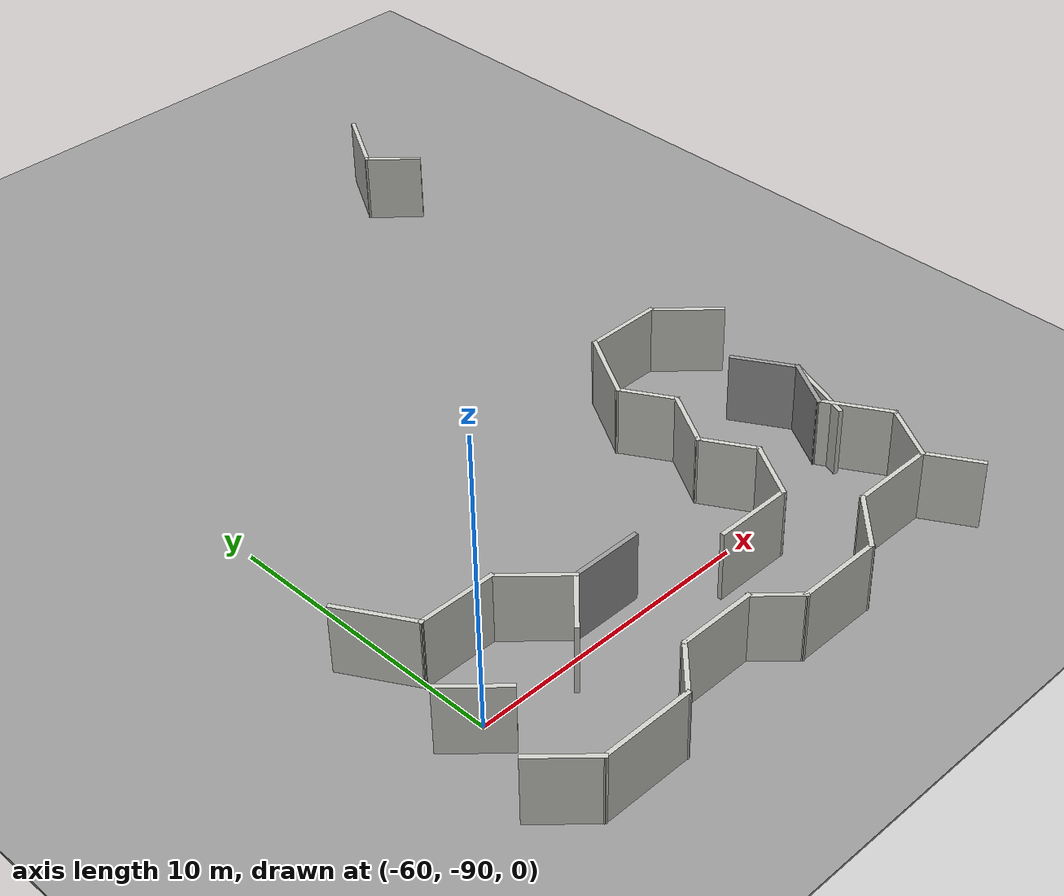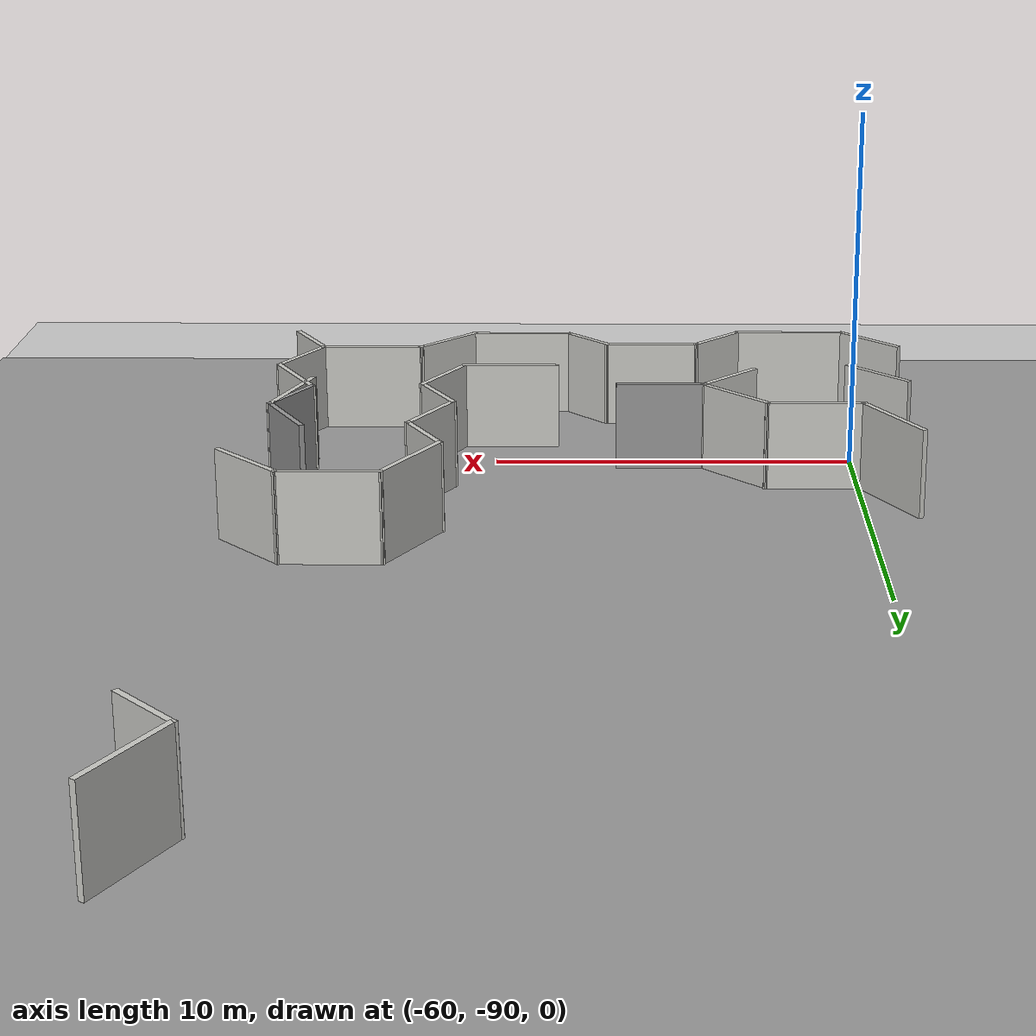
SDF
<sdf version="1.6">
 <world name="default">
  <model name="ground_plane">
   <pose>50 50 0 0 -0 0</pose>
   <static>1</static>
   <link name="link">
    <collision name="collision">
     <geometry><plane><normal>0 0 1</normal><size>100 100</size></plane></geometry>
     <surface><friction><ode><mu>100</mu><mu2>50</mu2></ode></friction></surface>
    </collision>
    <visual name="visual">
     <cast_shadows>0</cast_shadows>
     <geometry><plane><normal>0 0 1</normal><size>100 100</size></plane></geometry>
     <material>
      <script><uri>file://media/materials/scripts/gazebo.material</uri><name>Gazebo/Grey</name></script>
     </material>
    </visual>
   </link>
  </model>
  <model name="ground_plane_1">
   <static>1</static>
   <link name="link">
    <collision name="collision">
     <geometry><plane><normal>0 0 1</normal><size>100 100</size></plane></geometry>
     <surface><friction><ode><mu>100</mu><mu2>50</mu2></ode></friction></surface>
    </collision>
    <visual name="visual">
     <cast_shadows>0</cast_shadows>
     <geometry><plane><normal>0 0 1</normal><size>100 100</size></plane></geometry>
     <material>
      <script><uri>file://media/materials/scripts/gazebo.material</uri><name>Gazebo/Grey</name></script>
     </material>
    </visual>
   </link>
   <pose>-50 -50 0 0 -0 0</pose>
  </model>
  <model name="maze_1">
   <pose>-54.4916 -79.5001 0 0 -0 0</pose>
   <link name="Wall_10">
    <collision name="Wall_10_Collision">
     <geometry><box><size>2 0.15 2.5</size></box></geometry>
     <pose>0 0 1.25 0 -0 0</pose>
    </collision>
    <visual name="Wall_10_Visual">
     <pose>0 0 1.25 0 -0 0</pose>
     <geometry><box><size>2 0.15 2.5</size></box></geometry>
     <material>
      <script><uri>file://media/materials/scripts/gazebo.material</uri><name>Gazebo/Grey</name></script>
      <ambient>1 1 1 1</ambient>
     </material>
     <meta><layer>0</layer></meta>
    </visual>
    <pose>10.0085 -8.88058 0 0 -0 -2.0944</pose>
   </link>
   <link name="Wall_11">
    <collision name="Wall_11_Collision">
     <geometry><box><size>2.5 0.15 2.5</size></box></geometry>
     <pose>0 0 1.25 0 -0 0</pose>
    </collision>
    <visual name="Wall_11_Visual">
     <pose>0 0 1.25 0 -0 0</pose>
     <geometry><box><size>2.5 0.15 2.5</size></box></geometry>
     <material>
      <script><uri>file://media/materials/scripts/gazebo.material</uri><name>Gazebo/CeilingTiled</name></script>
      <ambient>1 1 1 1</ambient>
     </material>
     <meta><layer>0</layer></meta>
    </visual>
    <pose>10.1335 -10.6992 0 0 -0 -1.0472</pose>
   </link>
   <link name="Wall_12">
    <collision name="Wall_12_Collision">
     <geometry><box><size>2.25 0.15 2.5</size></box></geometry>
     <pose>0 0 1.25 0 -0 0</pose>
    </collision>
    <visual name="Wall_12_Visual">
     <pose>0 0 1.25 0 -0 0</pose>
     <geometry><box><size>2.25 0.15 2.5</size></box></geometry>
     <material>
      <script><uri>file://media/materials/scripts/gazebo.material</uri><name>Gazebo/CeilingTiled</name></script>
      <ambient>1 1 1 1</ambient>
     </material>
     <meta><layer>0</layer></meta>
    </visual>
    <pose>10.196 -12.6261 0 0 -0 -2.0944</pose>
   </link>
   <link name="Wall_126">
    <collision name="Wall_126_Collision">
     <geometry><box><size>2.5 0.15 2.5</size></box></geometry>
     <pose>0 0 1.25 0 -0 0</pose>
    </collision>
    <visual name="Wall_126_Visual">
     <pose>0 0 1.25 0 -0 0</pose>
     <geometry><box><size>2.5 0.15 2.5</size></box></geometry>
     <material>
      <script><uri>file://media/materials/scripts/gazebo.material</uri><name>Gazebo/Grey</name></script>
      <ambient>1 1 1 1</ambient>
     </material>
     <meta><layer>0</layer></meta>
    </visual>
    <pose>-0.135221 -9.92253 0 0 -0 3.14159</pose>
   </link>
   <link name="Wall_127">
    <collision name="Wall_127_Collision">
     <geometry><box><size>2.5 0.15 2.5</size></box></geometry>
     <pose>0 0 1.25 0 -0 0</pose>
    </collision>
    <visual name="Wall_127_Visual">
     <pose>0 0 1.25 0 -0 0</pose>
     <geometry><box><size>2.5 0.15 2.5</size></box></geometry>
     <material>
      <script><uri>file://media/materials/scripts/gazebo.material</uri><name>Gazebo/CeilingTiled</name></script>
      <ambient>1 1 1 1</ambient>
     </material>
     <meta><layer>0</layer></meta>
    </visual>
    <pose>-2.14107 -9.09168 0 0 -0 2.35619</pose>
   </link>
   <link name="Wall_128">
    <collision name="Wall_128_Collision">
     <geometry><box><size>2.75 0.15 2.5</size></box></geometry>
     <pose>0 0 1.25 0 -0 0</pose>
    </collision>
    <visual name="Wall_128_Visual">
     <pose>0 0 1.25 0 -0 0</pose>
     <geometry><box><size>2.75 0.15 2.5</size></box></geometry>
     <material>
      <script><uri>file://media/materials/scripts/gazebo.material</uri><name>Gazebo/CeilingTiled</name></script>
      <ambient>1 1 1 1</ambient>
     </material>
     <meta><layer>0</layer></meta>
    </visual>
    <pose>-4.27192 -8.26083 0 0 -0 3.14159</pose>
   </link>
   <link name="Wall_129">
    <collision name="Wall_129_Collision">
     <geometry><box><size>2.75 0.15 2.5</size></box></geometry>
     <pose>0 0 1.25 0 -0 0</pose>
    </collision>
    <visual name="Wall_129_Visual">
     <pose>0 0 1.25 0 -0 0</pose>
     <geometry><box><size>2.75 0.15 2.5</size></box></geometry>
     <material>
      <script><uri>file://media/materials/scripts/gazebo.material</uri><name>Gazebo/CeilingTiled</name></script>
      <ambient>1 1 1 1</ambient>
     </material>
     <meta><layer>0</layer></meta>
    </visual>
    <pose>-6.22192 -7.135 0 0 -0 2.0944</pose>
   </link>
   <link name="Wall_13">
    <collision name="Wall_13_Collision">
     <geometry><box><size>2 0.15 2.5</size></box></geometry>
     <pose>0 0 1.25 0 -0 0</pose>
    </collision>
    <visual name="Wall_13_Visual">
     <pose>0 0 1.25 0 -0 0</pose>
     <geometry><box><size>2 0.15 2.5</size></box></geometry>
     <material>
      <script><uri>file://media/materials/scripts/gazebo.material</uri><name>Gazebo/CeilingTiled</name></script>
      <ambient>1 1 1 1</ambient>
     </material>
     <meta><layer>0</layer></meta>
    </visual>
    <pose>10.1335 -14.3365 0 0 -0 -1.0472</pose>
   </link>
   <link name="Wall_135">
    <collision name="Wall_135_Collision">
     <geometry><box><size>2.22826 0.15 2.5</size></box></geometry>
     <pose>0 0 1.25 0 -0 0</pose>
    </collision>
    <visual name="Wall_135_Visual">
     <pose>0 0 1.25 0 -0 0</pose>
     <geometry><box><size>2.22826 0.15 2.5</size></box></geometry>
     <material>
      <script><uri>file://media/materials/scripts/gazebo.material</uri><name>Gazebo/CeilingTiled</name></script>
      <ambient>1 1 1 1</ambient>
     </material>
     <meta><layer>0</layer></meta>
    </visual>
    <pose>-2.04743 -10.6549 0 0 -0 0.782082</pose>
   </link>
   <link name="Wall_137">
    <collision name="Wall_137_Collision">
     <geometry><box><size>2.75 0.15 2.5</size></box></geometry>
     <pose>0 0 1.25 0 -0 0</pose>
    </collision>
    <visual name="Wall_137_Visual">
     <pose>0 0 1.25 0 -0 0</pose>
     <geometry><box><size>2.75 0.15 2.5</size></box></geometry>
     <material>
      <script><uri>file://media/materials/scripts/gazebo.material</uri><name>Gazebo/CeilingTiled</name></script>
      <ambient>1 1 1 1</ambient>
     </material>
     <meta><layer>0</layer></meta>
    </visual>
    <pose>4.12993 -11.7127 0 0 -0 0</pose>
   </link>
   <link name="Wall_138">
    <collision name="Wall_138_Collision">
     <geometry><box><size>2.25 0.15 2.5</size></box></geometry>
     <pose>0 0 1.25 0 -0 0</pose>
    </collision>
    <visual name="Wall_138_Visual">
     <pose>0 0 1.25 0 -0 0</pose>
     <geometry><box><size>2.25 0.15 2.5</size></box></geometry>
     <material>
      <script><uri>file://media/materials/scripts/gazebo.material</uri><name>Gazebo/CeilingTiled</name></script>
      <ambient>1 1 1 1</ambient>
     </material>
     <meta><layer>0</layer></meta>
    </visual>
    <pose>5.95493 -10.8034 0 0 -0 1.0472</pose>
   </link>
   <link name="Wall_139">
    <collision name="Wall_139_Collision">
     <geometry><box><size>2 0.15 2.5</size></box></geometry>
     <pose>0 0 1.25 0 -0 0</pose>
    </collision>
    <visual name="Wall_139_Visual">
     <pose>0 0 1.25 0 -0 0</pose>
     <geometry><box><size>2 0.15 2.5</size></box></geometry>
     <material>
      <script><uri>file://media/materials/scripts/gazebo.material</uri><name>Gazebo/CeilingTiled</name></script>
      <ambient>1 1 1 1</ambient>
     </material>
     <meta><layer>0</layer></meta>
    </visual>
    <pose>6.01743 -9.09296 0 0 -0 2.0944</pose>
   </link>
   <link name="Wall_140">
    <collision name="Wall_140_Collision">
     <geometry><box><size>2.25 0.15 2.5</size></box></geometry>
     <pose>0 0 1.25 0 -0 0</pose>
    </collision>
    <visual name="Wall_140_Visual">
     <pose>0 0 1.25 0 -0 0</pose>
     <geometry><box><size>2.25 0.15 2.5</size></box></geometry>
     <material>
      <script><uri>file://media/materials/scripts/gazebo.material</uri><name>Gazebo/CeilingTiled</name></script>
      <ambient>1 1 1 1</ambient>
     </material>
     <meta><layer>0</layer></meta>
    </visual>
    <pose>6.07993 -7.38256 0 0 -0 1.0472</pose>
   </link>
   <link name="Wall_141">
    <collision name="Wall_141_Collision">
     <geometry><box><size>2 0.15 2.5</size></box></geometry>
     <pose>0 0 1.25 0 -0 0</pose>
    </collision>
    <visual name="Wall_141_Visual">
     <pose>0 0 1.25 0 -0 0</pose>
     <geometry><box><size>2 0.15 2.5</size></box></geometry>
     <material>
      <script><uri>file://media/materials/scripts/gazebo.material</uri><name>Gazebo/CeilingTiled</name></script>
      <ambient>1 1 1 1</ambient>
     </material>
     <meta><layer>0</layer></meta>
    </visual>
    <pose>6.14243 -5.67216 0 0 -0 2.0944</pose>
   </link>
   <link name="Wall_142">
    <collision name="Wall_142_Collision">
     <geometry><box><size>2.75 0.15 2.5</size></box></geometry>
     <pose>0 0 1.25 0 -0 0</pose>
    </collision>
    <visual name="Wall_142_Visual">
     <pose>0 0 1.25 0 -0 0</pose>
     <geometry><box><size>2.75 0.15 2.5</size></box></geometry>
     <material>
      <script><uri>file://media/materials/scripts/gazebo.material</uri><name>Gazebo/CeilingTiled</name></script>
      <ambient>1 1 1 1</ambient>
     </material>
     <meta><layer>0</layer></meta>
    </visual>
    <pose>6.32993 -3.74525 0 0 -0 1.0472</pose>
   </link>
   <link name="Wall_143">
    <collision name="Wall_143_Collision">
     <geometry><box><size>2.75 0.15 2.5</size></box></geometry>
     <pose>0 0 1.25 0 -0 0</pose>
    </collision>
    <visual name="Wall_143_Visual">
     <pose>0 0 1.25 0 -0 0</pose>
     <geometry><box><size>2.75 0.15 2.5</size></box></geometry>
     <material>
      <script><uri>file://media/materials/scripts/gazebo.material</uri><name>Gazebo/CeilingTiled</name></script>
      <ambient>1 1 1 1</ambient>
     </material>
     <meta><layer>0</layer></meta>
    </visual>
    <pose>8.27993 -2.61942 0 0 -0 0</pose>
   </link>
   <link name="Wall_144">
    <collision name="Wall_144_Collision">
     <geometry><box><size>2.5 0.15 2.5</size></box></geometry>
     <pose>0 0 1.25 0 -0 0</pose>
    </collision>
    <visual name="Wall_144_Visual">
     <pose>0 0 1.25 0 -0 0</pose>
     <geometry><box><size>2.5 0.15 2.5</size></box></geometry>
     <material>
      <script><uri>file://media/materials/scripts/gazebo.material</uri><name>Gazebo/CeilingTiled</name></script>
      <ambient>1 1 1 1</ambient>
     </material>
     <meta><layer>0</layer></meta>
    </visual>
    <pose>10.4108 -3.45027 0 0 -0 -0.785398</pose>
   </link>
   <link name="Wall_15">
    <collision name="Wall_15_Collision">
     <geometry><box><size>3 0.15 2.5</size></box></geometry>
     <pose>0 0 1.25 0 -0 0</pose>
    </collision>
    <visual name="Wall_15_Visual">
     <pose>0 0 1.25 0 -0 0</pose>
     <geometry><box><size>3 0.15 2.5</size></box></geometry>
     <material>
      <script><uri>file://media/materials/scripts/gazebo.material</uri><name>Gazebo/CeilingTiled</name></script>
      <ambient>1 1 1 1</ambient>
     </material>
     <meta><layer>0</layer></meta>
    </visual>
    <pose>8.24595 -13.5355 0 0 -0 3.14159</pose>
   </link>
   <link name="Wall_16">
    <collision name="Wall_16_Collision">
     <geometry><box><size>2.25 0.15 2.5</size></box></geometry>
     <pose>0 0 1.25 0 -0 0</pose>
    </collision>
    <visual name="Wall_16_Visual">
     <pose>0 0 1.25 0 -0 0</pose>
     <geometry><box><size>2.25 0.15 2.5</size></box></geometry>
     <material>
      <script><uri>file://media/materials/scripts/gazebo.material</uri><name>Gazebo/CeilingTiled</name></script>
      <ambient>1 1 1 1</ambient>
     </material>
     <meta><layer>0</layer></meta>
    </visual>
    <pose>6.07849 -14.2779 0 0 -0 -2.35619</pose>
   </link>
   <link name="Wall_169">
    <collision name="Wall_169_Collision">
     <geometry><box><size>2 0.15 2.5</size></box></geometry>
     <pose>0 0 1.25 0 -0 0</pose>
    </collision>
    <visual name="Wall_169_Visual">
     <pose>0 0 1.25 0 -0 0</pose>
     <geometry><box><size>2 0.15 2.5</size></box></geometry>
     <material>
      <script><uri>file://media/materials/scripts/gazebo.material</uri><name>Gazebo/CeilingTiled</name></script>
      <ambient>1 1 1 1</ambient>
     </material>
     <meta><layer>0</layer></meta>
    </visual>
    <pose>10.1475 10.6498 0 0 -0 2.35619</pose>
   </link>
   <link name="Wall_17">
    <collision name="Wall_17_Collision">
     <geometry><box><size>3 0.15 2.5</size></box></geometry>
     <pose>0 0 1.25 0 -0 0</pose>
    </collision>
    <visual name="Wall_17_Visual">
     <pose>0 0 1.25 0 -0 0</pose>
     <geometry><box><size>3 0.15 2.5</size></box></geometry>
     <material>
      <script><uri>file://media/materials/scripts/gazebo.material</uri><name>Gazebo/CeilingTiled</name></script>
      <ambient>1 1 1 1</ambient>
     </material>
     <meta><layer>0</layer></meta>
    </visual>
    <pose>3.91103 -15.0204 0 0 -0 3.14159</pose>
   </link>
   <link name="Wall_170">
    <collision name="Wall_170_Collision">
     <geometry><box><size>2.75 0.15 2.5</size></box></geometry>
     <pose>0 0 1.25 0 -0 0</pose>
    </collision>
    <visual name="Wall_170_Visual">
     <pose>0 0 1.25 0 -0 0</pose>
     <geometry><box><size>2.75 0.15 2.5</size></box></geometry>
     <material>
      <script><uri>file://media/materials/scripts/gazebo.material</uri><name>Gazebo/CeilingTiled</name></script>
      <ambient>1 1 1 1</ambient>
     </material>
     <meta><layer>0</layer></meta>
    </visual>
    <pose>10.1434 12.4297 0 0 -0 1.0472</pose>
   </link>
   <link name="Wall_18">
    <collision name="Wall_18_Collision">
     <geometry><box><size>1.75 0.15 2.5</size></box></geometry>
     <pose>0 0 1.25 0 -0 0</pose>
    </collision>
    <visual name="Wall_18_Visual">
     <pose>0 0 1.25 0 -0 0</pose>
     <geometry><box><size>1.75 0.15 2.5</size></box></geometry>
     <material>
      <script><uri>file://media/materials/scripts/gazebo.material</uri><name>Gazebo/CeilingTiled</name></script>
      <ambient>1 1 1 1</ambient>
     </material>
     <meta><layer>0</layer></meta>
    </visual>
    <pose>1.92034 -14.4547 0 0 -0 2.35619</pose>
   </link>
   <link name="Wall_19">
    <collision name="Wall_19_Collision">
     <geometry><box><size>2.75 0.15 2.5</size></box></geometry>
     <pose>0 0 1.25 0 -0 0</pose>
    </collision>
    <visual name="Wall_19_Visual">
     <pose>0 0 1.25 0 -0 0</pose>
     <geometry><box><size>2.75 0.15 2.5</size></box></geometry>
     <material>
      <script><uri>file://media/materials/scripts/gazebo.material</uri><name>Gazebo/CeilingTiled</name></script>
      <ambient>1 1 1 1</ambient>
     </material>
     <meta><layer>0</layer></meta>
    </visual>
    <pose>0.054658 -13.889 0 0 -0 3.14159</pose>
   </link>
   <link name="Wall_20">
    <collision name="Wall_20_Collision">
     <geometry><box><size>2 0.15 2.5</size></box></geometry>
     <pose>0 0 1.25 0 -0 0</pose>
    </collision>
    <visual name="Wall_20_Visual">
     <pose>0 0 1.25 0 -0 0</pose>
     <geometry><box><size>2 0.15 2.5</size></box></geometry>
     <material>
      <script><uri>file://media/materials/scripts/gazebo.material</uri><name>Gazebo/CeilingTiled</name></script>
      <ambient>1 1 1 1</ambient>
     </material>
     <meta><layer>0</layer></meta>
    </visual>
    <pose>-1.89942 -14.5431 0 0 -0 -2.35619</pose>
   </link>
   <link name="Wall_21">
    <collision name="Wall_21_Collision">
     <geometry><box><size>3.25 0.15 2.5</size></box></geometry>
     <pose>0 0 1.25 0 -0 0</pose>
    </collision>
    <visual name="Wall_21_Visual">
     <pose>0 0 1.25 0 -0 0</pose>
     <geometry><box><size>3.25 0.15 2.5</size></box></geometry>
     <material>
      <script><uri>file://media/materials/scripts/gazebo.material</uri><name>Gazebo/CeilingTiled</name></script>
      <ambient>1 1 1 1</ambient>
     </material>
     <meta><layer>0</layer></meta>
    </visual>
    <pose>-4.10349 -15.1972 0 0 -0 3.14159</pose>
   </link>
   <link name="Wall_22">
    <collision name="Wall_22_Collision">
     <geometry><box><size>2.25 0.15 2.5</size></box></geometry>
     <pose>0 0 1.25 0 -0 0</pose>
    </collision>
    <visual name="Wall_22_Visual">
     <pose>0 0 1.25 0 -0 0</pose>
     <geometry><box><size>2.25 0.15 2.5</size></box></geometry>
     <material>
      <script><uri>file://media/materials/scripts/gazebo.material</uri><name>Gazebo/CeilingTiled</name></script>
      <ambient>1 1 1 1</ambient>
     </material>
     <meta><layer>0</layer></meta>
    </visual>
    <pose>-6.39595 -14.4547 0 0 -0 2.35619</pose>
   </link>
   <link name="Wall_31">
    <collision name="Wall_31_Collision">
     <geometry><box><size>2.25 0.15 2.5</size></box></geometry>
     <pose>0 0 1.25 0 -0 0</pose>
    </collision>
    <visual name="Wall_31_Visual">
     <pose>0 0 1.25 0 -0 0</pose>
     <geometry><box><size>2.25 0.15 2.5</size></box></geometry>
     <material>
      <script><uri>file://media/materials/scripts/gazebo.material</uri><name>Gazebo/CeilingTiled</name></script>
      <ambient>1 1 1 1</ambient>
     </material>
     <meta><layer>0</layer></meta>
    </visual>
    <pose>-6.27095 -11.0339 0 0 -0 -0.785398</pose>
   </link>
   <link name="Wall_5">
    <collision name="Wall_5_Collision">
     <geometry><box><size>2.25 0.15 2.5</size></box></geometry>
     <pose>0 0 1.25 0 -0 0</pose>
    </collision>
    <visual name="Wall_5_Visual">
     <pose>0 0 1.25 0 -0 0</pose>
     <geometry><box><size>2.25 0.15 2.5</size></box></geometry>
     <material>
      <script><uri>file://media/materials/scripts/gazebo.material</uri><name>Gazebo/Grey</name></script>
      <ambient>1 1 1 1</ambient>
     </material>
     <meta><layer>0</layer></meta>
    </visual>
    <pose>9.94595 -7.17018 0 0 -0 -1.0472</pose>
   </link>
   <link name="Wall_6">
    <collision name="Wall_6_Collision">
     <geometry><box><size>2.65885 0.15 2.5</size></box></geometry>
     <pose>0 0 1.25 0 -0 0</pose>
    </collision>
    <visual name="Wall_6_Visual">
     <pose>0 0 1.25 0 -0 0</pose>
     <geometry><box><size>2.65885 0.15 2.5</size></box></geometry>
     <material>
      <script><uri>file://media/materials/scripts/gazebo.material</uri><name>Gazebo/CeilingTiled</name></script>
      <ambient>1 1 1 1</ambient>
     </material>
     <meta><layer>0</layer></meta>
    </visual>
    <pose>10.0462 -9.25983 0 0 -0 -1.91623</pose>
   </link>
   <link name="Wall_9">
    <collision name="Wall_9_Collision">
     <geometry><box><size>2.25 0.15 2.5</size></box></geometry>
     <pose>0 0 1.25 0 -0 0</pose>
    </collision>
    <visual name="Wall_9_Visual">
     <pose>0 0 1.25 0 -0 0</pose>
     <geometry><box><size>2.25 0.15 2.5</size></box></geometry>
     <material>
      <script><uri>file://media/materials/scripts/gazebo.material</uri><name>Gazebo/CeilingTiled</name></script>
      <ambient>1 1 1 1</ambient>
     </material>
     <meta><layer>0</layer></meta>
    </visual>
    <pose>9.94595 -7.17018 0 0 -0 -1.0472</pose>
   </link>
   <static>1</static>
  </model>
 </world>
</sdf>
